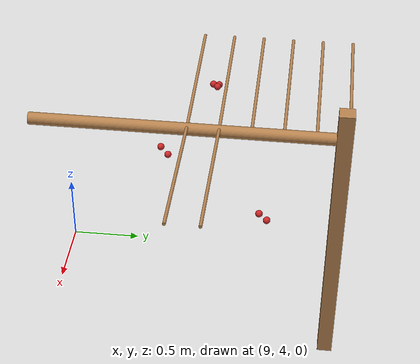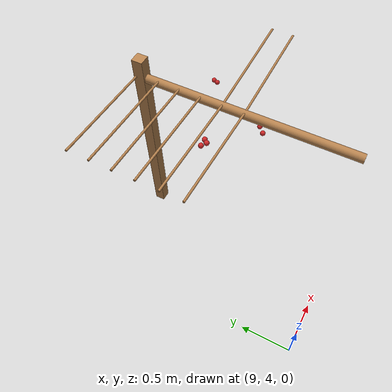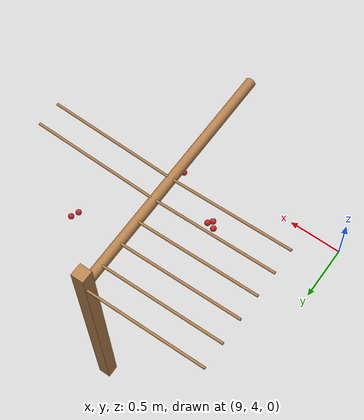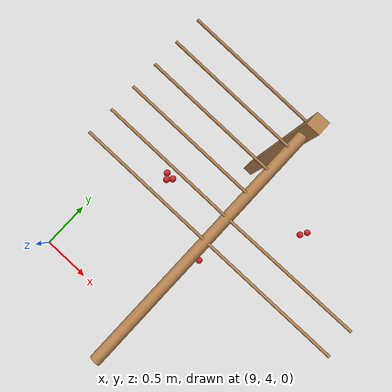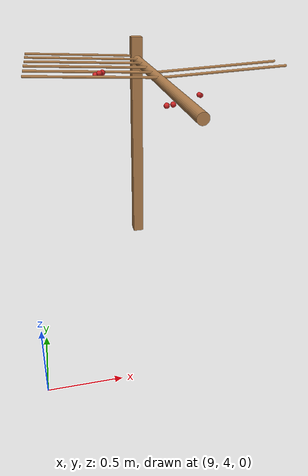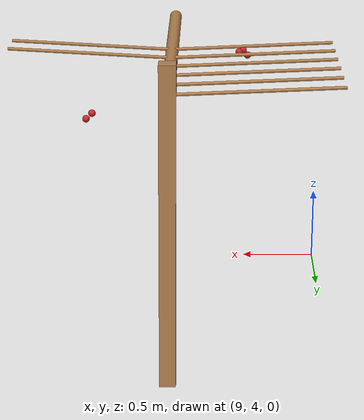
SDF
<sdf version="1.4">
 <model name="pergola">
  <include><name>post_58</name><pose>10.0 6.0 0 0 0 0</pose><uri>model://post</uri></include>
  <link name="baseBranch_52">
   <pose>10.0 5.0 1.8 1.5707963267948966 0 0</pose>
   <collision name="collision">
    <geometry><cylinder><radius>0.04</radius><length>1.94</length></cylinder></geometry>
   </collision>
   <visual name="visual">
    <geometry><cylinder><radius>0.04</radius><length>1.94</length></cylinder></geometry>
    <material><script><name>Gazebo/WoodFloor</name></script></material>
   </visual>
   <inertial>
    <mass>10</mass>
    <inertia>
     <ixx>3.140333333333333</ixx>
     <ixy>0.0</ixy>
     <ixz>0.0</ixz>
     <iyy>3.140333333333333</iyy>
     <iyz>0.0</iyz>
     <izz>0.008</izz>
    </inertia>
   </inertial>
  </link>
  <link name="vine_851">
   <pose>9.5 5.03 1.85 0 -1.5208379310729538 0</pose>
   <collision name="collision">
    <geometry><cylinder><radius>0.01</radius><length>1.0012492197250393</length></cylinder></geometry>
   </collision>
   <visual name="visual">
    <geometry><cylinder><radius>0.01</radius><length>1.0012492197250393</length></cylinder></geometry>
    <material><script><name>Gazebo/WoodFloor</name></script></material>
   </visual>
   <inertial>
    <mass>5</mass>
    <inertia>
     <ixx>0.41783333333333345</ixx>
     <ixy>0.0</ixy>
     <ixz>0.0</ixz>
     <iyy>0.41783333333333345</iyy>
     <iyz>0.0</iyz>
     <izz>0.00025</izz>
    </inertia>
   </inertial>
  </link>
  <link name="vine_853">
   <pose>9.5 5.23 1.85 0 -1.5208379310729538 0</pose>
   <collision name="collision">
    <geometry><cylinder><radius>0.01</radius><length>1.0012492197250393</length></cylinder></geometry>
   </collision>
   <visual name="visual">
    <geometry><cylinder><radius>0.01</radius><length>1.0012492197250393</length></cylinder></geometry>
    <material><script><name>Gazebo/WoodFloor</name></script></material>
   </visual>
   <inertial>
    <mass>5</mass>
    <inertia>
     <ixx>0.41783333333333345</ixx>
     <ixy>0.0</ixy>
     <ixz>0.0</ixz>
     <iyy>0.41783333333333345</iyy>
     <iyz>0.0</iyz>
     <izz>0.00025</izz>
    </inertia>
   </inertial>
  </link>
  <link name="vine_855">
   <pose>9.5 5.430000000000001 1.85 0 -1.5208379310729538 0</pose>
   <collision name="collision">
    <geometry><cylinder><radius>0.01</radius><length>1.0012492197250393</length></cylinder></geometry>
   </collision>
   <visual name="visual">
    <geometry><cylinder><radius>0.01</radius><length>1.0012492197250393</length></cylinder></geometry>
    <material><script><name>Gazebo/WoodFloor</name></script></material>
   </visual>
   <inertial>
    <mass>5</mass>
    <inertia>
     <ixx>0.41783333333333345</ixx>
     <ixy>0.0</ixy>
     <ixz>0.0</ixz>
     <iyy>0.41783333333333345</iyy>
     <iyz>0.0</iyz>
     <izz>0.00025</izz>
    </inertia>
   </inertial>
  </link>
  <link name="vine_857">
   <pose>9.5 5.630000000000001 1.85 0 -1.5208379310729538 0</pose>
   <collision name="collision">
    <geometry><cylinder><radius>0.01</radius><length>1.0012492197250393</length></cylinder></geometry>
   </collision>
   <visual name="visual">
    <geometry><cylinder><radius>0.01</radius><length>1.0012492197250393</length></cylinder></geometry>
    <material><script><name>Gazebo/WoodFloor</name></script></material>
   </visual>
   <inertial>
    <mass>5</mass>
    <inertia>
     <ixx>0.41783333333333345</ixx>
     <ixy>0.0</ixy>
     <ixz>0.0</ixz>
     <iyy>0.41783333333333345</iyy>
     <iyz>0.0</iyz>
     <izz>0.00025</izz>
    </inertia>
   </inertial>
  </link>
  <link name="vine_859">
   <pose>9.5 5.830000000000001 1.85 0 -1.5208379310729538 0</pose>
   <collision name="collision">
    <geometry><cylinder><radius>0.01</radius><length>1.0012492197250393</length></cylinder></geometry>
   </collision>
   <visual name="visual">
    <geometry><cylinder><radius>0.01</radius><length>1.0012492197250393</length></cylinder></geometry>
    <material><script><name>Gazebo/WoodFloor</name></script></material>
   </visual>
   <inertial>
    <mass>5</mass>
    <inertia>
     <ixx>0.41783333333333345</ixx>
     <ixy>0.0</ixy>
     <ixz>0.0</ixz>
     <iyy>0.41783333333333345</iyy>
     <iyz>0.0</iyz>
     <izz>0.00025</izz>
    </inertia>
   </inertial>
  </link>
  <link name="vine_861">
   <pose>9.5 6.03 1.85 0 -1.5208379310729538 0</pose>
   <collision name="collision">
    <geometry><cylinder><radius>0.01</radius><length>1.0012492197250393</length></cylinder></geometry>
   </collision>
   <visual name="visual">
    <geometry><cylinder><radius>0.01</radius><length>1.0012492197250393</length></cylinder></geometry>
    <material><script><name>Gazebo/WoodFloor</name></script></material>
   </visual>
   <inertial>
    <mass>5</mass>
    <inertia>
     <ixx>0.41783333333333345</ixx>
     <ixy>0.0</ixy>
     <ixz>0.0</ixz>
     <iyy>0.41783333333333345</iyy>
     <iyz>0.0</iyz>
     <izz>0.00025</izz>
    </inertia>
   </inertial>
  </link>
  <link name="vine_1050">
   <pose>10.5 5.03 1.85 0 1.5208379310729538 0</pose>
   <collision name="collision">
    <geometry><cylinder><radius>0.01</radius><length>1.0012492197250393</length></cylinder></geometry>
   </collision>
   <visual name="visual">
    <geometry><cylinder><radius>0.01</radius><length>1.0012492197250393</length></cylinder></geometry>
    <material><script><name>Gazebo/WoodFloor</name></script></material>
   </visual>
   <inertial>
    <mass>5</mass>
    <inertia>
     <ixx>0.41783333333333345</ixx>
     <ixy>0.0</ixy>
     <ixz>0.0</ixz>
     <iyy>0.41783333333333345</iyy>
     <iyz>0.0</iyz>
     <izz>0.00025</izz>
    </inertia>
   </inertial>
  </link>
  <link name="vine_1052">
   <pose>10.5 5.23 1.85 0 1.5208379310729538 0</pose>
   <collision name="collision">
    <geometry><cylinder><radius>0.01</radius><length>1.0012492197250393</length></cylinder></geometry>
   </collision>
   <visual name="visual">
    <geometry><cylinder><radius>0.01</radius><length>1.0012492197250393</length></cylinder></geometry>
    <material><script><name>Gazebo/WoodFloor</name></script></material>
   </visual>
   <inertial>
    <mass>5</mass>
    <inertia>
     <ixx>0.41783333333333345</ixx>
     <ixy>0.0</ixy>
     <ixz>0.0</ixz>
     <iyy>0.41783333333333345</iyy>
     <iyz>0.0</iyz>
     <izz>0.00025</izz>
    </inertia>
   </inertial>
  </link>
  <link name="fruit_29">
   <pose>10.46682640852874 5.518764289166446 1.555758377622948 0 0 0</pose>
   <collision name="fruit_collision_29"><geometry><sphere><radius>0.022</radius></sphere></geometry></collision>
   <visual name="visual">
    <geometry><sphere><radius>0.022</radius></sphere></geometry>
    <material><script><name>Gazebo/Red</name></script></material>
   </visual>
   <inertial>
    <mass>0.05</mass>
    <inertia>
     <ixx>9.679999999999999e-06</ixx>
     <ixy>0.0</ixy>
     <ixz>0.0</ixz>
     <iyy>9.679999999999999e-06</iyy>
     <iyz>0.0</iyz>
     <izz>9.679999999999999e-06</izz>
    </inertia>
   </inertial>
   <sensor name="fruit_contact_29" type="contact">
    <contact><collision>fruit_collision_29</collision></contact>
   </sensor>
  </link>
  <link name="fruit_35">
   <pose>10.005861504300224 4.864309036207878 1.6551265583958563 0 0 0</pose>
   <collision name="fruit_collision_35"><geometry><sphere><radius>0.022</radius></sphere></geometry></collision>
   <visual name="visual">
    <geometry><sphere><radius>0.022</radius></sphere></geometry>
    <material><script><name>Gazebo/Red</name></script></material>
   </visual>
   <inertial>
    <mass>0.05</mass>
    <inertia>
     <ixx>9.679999999999999e-06</ixx>
     <ixy>0.0</ixy>
     <ixz>0.0</ixz>
     <iyy>9.679999999999999e-06</iyy>
     <iyz>0.0</iyz>
     <izz>9.679999999999999e-06</izz>
    </inertia>
   </inertial>
   <sensor name="fruit_contact_35" type="contact">
    <contact><collision>fruit_collision_35</collision></contact>
   </sensor>
  </link>
  <link name="fruit_377">
   <pose>9.531198250057217 5.179960814366661 1.8317051726669318 0 0 0</pose>
   <collision name="fruit_collision_377"><geometry><sphere><radius>0.022</radius></sphere></geometry></collision>
   <visual name="visual">
    <geometry><sphere><radius>0.022</radius></sphere></geometry>
    <material><script><name>Gazebo/Red</name></script></material>
   </visual>
   <inertial>
    <mass>0.05</mass>
    <inertia>
     <ixx>9.679999999999999e-06</ixx>
     <ixy>0.0</ixy>
     <ixz>0.0</ixz>
     <iyy>9.679999999999999e-06</iyy>
     <iyz>0.0</iyz>
     <izz>9.679999999999999e-06</izz>
    </inertia>
   </inertial>
   <sensor name="fruit_contact_377" type="contact">
    <contact><collision>fruit_collision_377</collision></contact>
   </sensor>
  </link>
  <link name="fruit_543">
   <pose>9.558086447021429 5.145719680128345 1.8516353828966061 0 0 0</pose>
   <collision name="fruit_collision_543"><geometry><sphere><radius>0.022</radius></sphere></geometry></collision>
   <visual name="visual">
    <geometry><sphere><radius>0.022</radius></sphere></geometry>
    <material><script><name>Gazebo/Red</name></script></material>
   </visual>
   <inertial>
    <mass>0.05</mass>
    <inertia>
     <ixx>9.679999999999999e-06</ixx>
     <ixy>0.0</ixy>
     <ixz>0.0</ixz>
     <iyy>9.679999999999999e-06</iyy>
     <iyz>0.0</iyz>
     <izz>9.679999999999999e-06</izz>
    </inertia>
   </inertial>
   <sensor name="fruit_contact_543" type="contact">
    <contact><collision>fruit_collision_543</collision></contact>
   </sensor>
  </link>
  <link name="fruit_551">
   <pose>10.498621497531564 5.567502833273884 1.535818728033975 0 0 0</pose>
   <collision name="fruit_collision_551"><geometry><sphere><radius>0.022</radius></sphere></geometry></collision>
   <visual name="visual">
    <geometry><sphere><radius>0.022</radius></sphere></geometry>
    <material><script><name>Gazebo/Red</name></script></material>
   </visual>
   <inertial>
    <mass>0.05</mass>
    <inertia>
     <ixx>9.679999999999999e-06</ixx>
     <ixy>0.0</ixy>
     <ixz>0.0</ixz>
     <iyy>9.679999999999999e-06</iyy>
     <iyz>0.0</iyz>
     <izz>9.679999999999999e-06</izz>
    </inertia>
   </inertial>
   <sensor name="fruit_contact_551" type="contact">
    <contact><collision>fruit_collision_551</collision></contact>
   </sensor>
  </link>
  <link name="fruit_611">
   <pose>10.069415561168526 4.917646660603732 1.6464717985590247 0 0 0</pose>
   <collision name="fruit_collision_611"><geometry><sphere><radius>0.022</radius></sphere></geometry></collision>
   <visual name="visual">
    <geometry><sphere><radius>0.022</radius></sphere></geometry>
    <material><script><name>Gazebo/Red</name></script></material>
   </visual>
   <inertial>
    <mass>0.05</mass>
    <inertia>
     <ixx>9.679999999999999e-06</ixx>
     <ixy>0.0</ixy>
     <ixz>0.0</ixz>
     <iyy>9.679999999999999e-06</iyy>
     <iyz>0.0</iyz>
     <izz>9.679999999999999e-06</izz>
    </inertia>
   </inertial>
   <sensor name="fruit_contact_611" type="contact">
    <contact><collision>fruit_collision_611</collision></contact>
   </sensor>
  </link>
  <link name="fruit_781">
   <pose>9.583391234813623 5.174594645115884 1.8499682359205942 0 0 0</pose>
   <collision name="fruit_collision_781"><geometry><sphere><radius>0.022</radius></sphere></geometry></collision>
   <visual name="visual">
    <geometry><sphere><radius>0.022</radius></sphere></geometry>
    <material><script><name>Gazebo/Red</name></script></material>
   </visual>
   <inertial>
    <mass>0.05</mass>
    <inertia>
     <ixx>9.679999999999999e-06</ixx>
     <ixy>0.0</ixy>
     <ixz>0.0</ixz>
     <iyy>9.679999999999999e-06</iyy>
     <iyz>0.0</iyz>
     <izz>9.679999999999999e-06</izz>
    </inertia>
   </inertial>
   <sensor name="fruit_contact_781" type="contact">
    <contact><collision>fruit_collision_781</collision></contact>
   </sensor>
  </link>
 </model>
</sdf>
